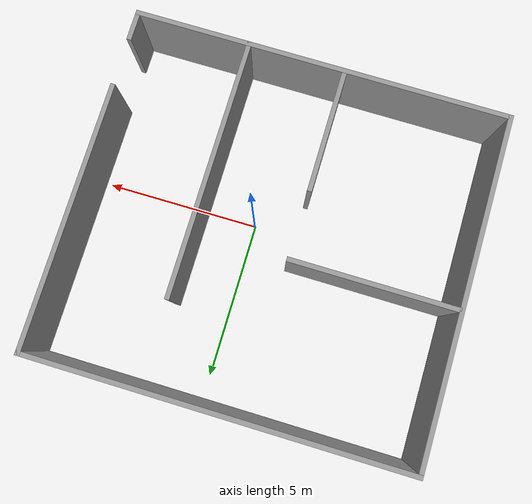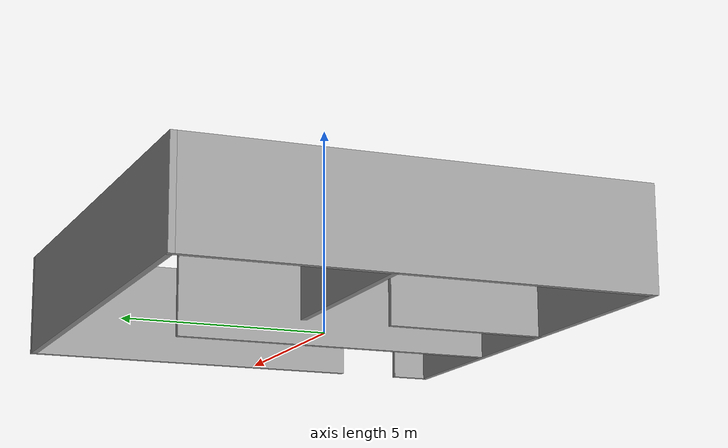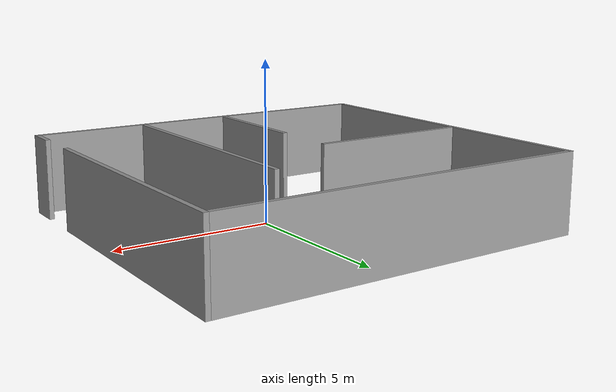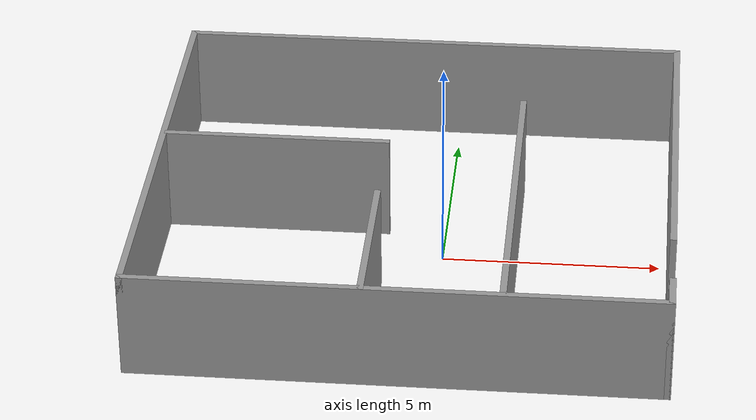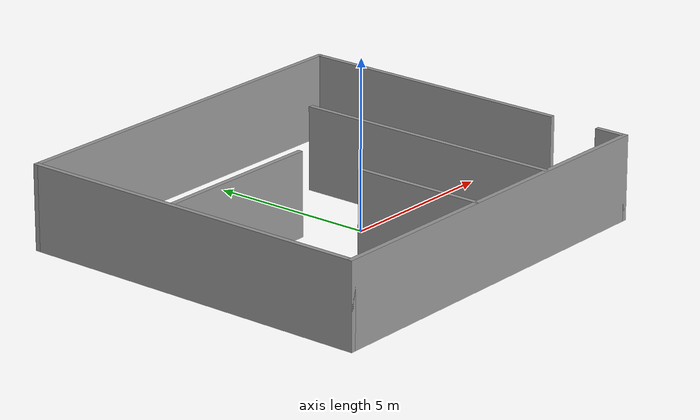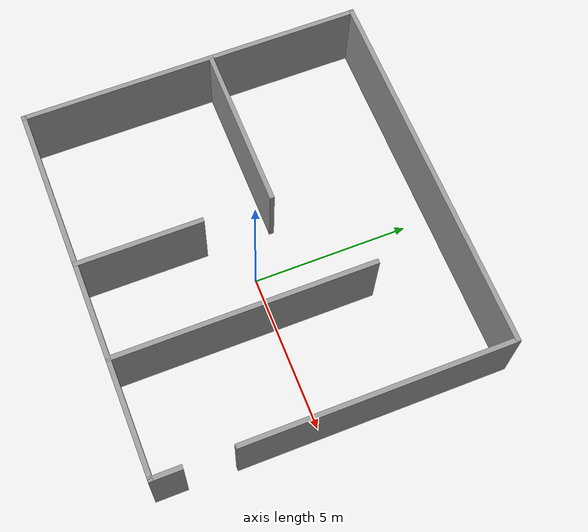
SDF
<?xml version='1.0'?>
<sdf version='1.6'>
  <model name='house_001'>
    <pose frame=''>-0.676984 0.398998 0 0 -0 0</pose>
    <link name='Wall_0'>
      <collision name='Wall_0_Collision'>
        <geometry>
          <box>
            <size>12 0.15 2.5</size>
          </box>
        </geometry>
        <pose frame=''>0 0 1.25 0 -0 0</pose>
      </collision>
      <visual name='Wall_0_Visual'>
        <pose frame=''>0 0 1.25 0 -0 0</pose>
        <geometry>
          <box>
            <size>12 0.15 2.5</size>
          </box>
        </geometry>
        <material>
          <script>
            <uri>file://media/materials/scripts/gazebo.material</uri>
            <name>Gazebo/Grey</name>
          </script>
          <ambient>1 1 1 1</ambient>
        </material>
        <meta>
          <layer>0</layer>
        </meta>
      </visual>
      <pose frame=''>0 -5.425 0 0 -0 0</pose>
    </link>
    <link name='Wall_11'>
      <collision name='Wall_11_Collision'>
        <geometry>
          <box>
            <size>1 0.15 2.5</size>
          </box>
        </geometry>
        <pose frame=''>0 0 1.25 0 -0 0</pose>
      </collision>
      <visual name='Wall_11_Visual'>
        <pose frame=''>0 0 1.25 0 -0 0</pose>
        <geometry>
          <box>
            <size>1 0.15 2.5</size>
          </box>
        </geometry>
        <material>
          <script>
            <uri>file://media/materials/scripts/gazebo.material</uri>
            <name>Gazebo/Grey</name>
          </script>
          <ambient>1 1 1 1</ambient>
        </material>
        <meta>
          <layer>0</layer>
        </meta>
      </visual>
      <pose frame=''>5.925 -5 0 0 -0 1.5708</pose>
    </link>
    <link name='Wall_13'>
      <collision name='Wall_13_Collision'>
        <geometry>
          <box>
            <size>8.5 0.15 2.5</size>
          </box>
        </geometry>
        <pose frame=''>0 0 1.25 0 -0 0</pose>
      </collision>
      <visual name='Wall_13_Visual'>
        <pose frame=''>0 0 1.25 0 -0 0</pose>
        <geometry>
          <box>
            <size>8.5 0.15 2.5</size>
          </box>
        </geometry>
        <material>
          <script>
            <uri>file://media/materials/scripts/gazebo.material</uri>
            <name>Gazebo/Grey</name>
          </script>
          <ambient>1 1 1 1</ambient>
        </material>
        <meta>
          <layer>0</layer>
        </meta>
      </visual>
      <pose frame=''>5.925 1.25 0 0 -0 -1.5708</pose>
    </link>
    <link name='Wall_15'>
      <collision name='Wall_15_Collision'>
        <geometry>
          <box>
            <size>8.25 0.15 2.5</size>
          </box>
        </geometry>
        <pose frame=''>0 0 1.25 0 -0 0</pose>
      </collision>
      <visual name='Wall_15_Visual'>
        <pose frame=''>0 0 1.25 0 -0 0</pose>
        <geometry>
          <box>
            <size>8.25 0.15 2.5</size>
          </box>
        </geometry>
        <material>
          <script>
            <uri>file://media/materials/scripts/gazebo.material</uri>
            <name>Gazebo/Grey</name>
          </script>
          <ambient>1 1 1 1</ambient>
        </material>
        <meta>
          <layer>0</layer>
        </meta>
      </visual>
      <pose frame=''>2.33019 -1.35944 0 0 -0 1.5708</pose>
    </link>
    <link name='Wall_18'>
      <collision name='Wall_18_Collision'>
        <geometry>
          <box>
            <size>5.25 0.15 2.5</size>
          </box>
        </geometry>
        <pose frame=''>0 0 1.25 0 -0 0</pose>
      </collision>
      <visual name='Wall_18_Visual'>
        <pose frame=''>0 0 1.25 0 -0 0</pose>
        <geometry>
          <box>
            <size>5.25 0.15 2.5</size>
          </box>
        </geometry>
        <material>
          <script>
            <uri>file://media/materials/scripts/gazebo.material</uri>
            <name>Gazebo/Grey</name>
          </script>
          <ambient>1 1 1 1</ambient>
        </material>
        <meta>
          <layer>0</layer>
        </meta>
      </visual>
      <pose frame=''>-3.27883 0.637363 0 0 -0 3.14159</pose>
    </link>
    <link name='Wall_20'>
      <collision name='Wall_20_Collision'>
        <geometry>
          <box>
            <size>4 0.15 2.5</size>
          </box>
        </geometry>
        <pose frame=''>0 0 1.25 0 -0 0</pose>
      </collision>
      <visual name='Wall_20_Visual'>
        <pose frame=''>0 0 1.25 0 -0 0</pose>
        <geometry>
          <box>
            <size>4 0.15 2.5</size>
          </box>
        </geometry>
        <material>
          <script>
            <uri>file://media/materials/scripts/gazebo.material</uri>
            <name>Gazebo/Grey</name>
          </script>
          <ambient>1 1 1 1</ambient>
        </material>
        <meta>
          <layer>0</layer>
        </meta>
      </visual>
      <pose frame=''>-0.728828 -3.48801 0 0 -0 -1.5708</pose>
    </link>
    <link name='Wall_8'>
      <collision name='Wall_8_Collision'>
        <geometry>
          <box>
            <size>12 0.15 2.5</size>
          </box>
        </geometry>
        <pose frame=''>0 0 1.25 0 -0 0</pose>
      </collision>
      <visual name='Wall_8_Visual'>
        <pose frame=''>0 0 1.25 0 -0 0</pose>
        <geometry>
          <box>
            <size>12 0.15 2.5</size>
          </box>
        </geometry>
        <material>
          <script>
            <uri>file://media/materials/scripts/gazebo.material</uri>
            <name>Gazebo/Grey</name>
          </script>
          <ambient>1 1 1 1</ambient>
        </material>
        <meta>
          <layer>0</layer>
        </meta>
      </visual>
      <pose frame=''>0 5.425 0 0 -0 3.14159</pose>
    </link>
    <link name='Wall_9'>
      <collision name='Wall_9_Collision'>
        <geometry>
          <box>
            <size>11 0.15 2.5</size>
          </box>
        </geometry>
        <pose frame=''>0 0 1.25 0 -0 0</pose>
      </collision>
      <visual name='Wall_9_Visual'>
        <pose frame=''>0 0 1.25 0 -0 0</pose>
        <geometry>
          <box>
            <size>11 0.15 2.5</size>
          </box>
        </geometry>
        <material>
          <script>
            <uri>file://media/materials/scripts/gazebo.material</uri>
            <name>Gazebo/Grey</name>
          </script>
          <ambient>1 1 1 1</ambient>
        </material>
        <meta>
          <layer>0</layer>
        </meta>
      </visual>
      <pose frame=''>-5.925 0 0 0 -0 -1.5708</pose>
    </link>
    <static>1</static>
  </model>
</sdf>
